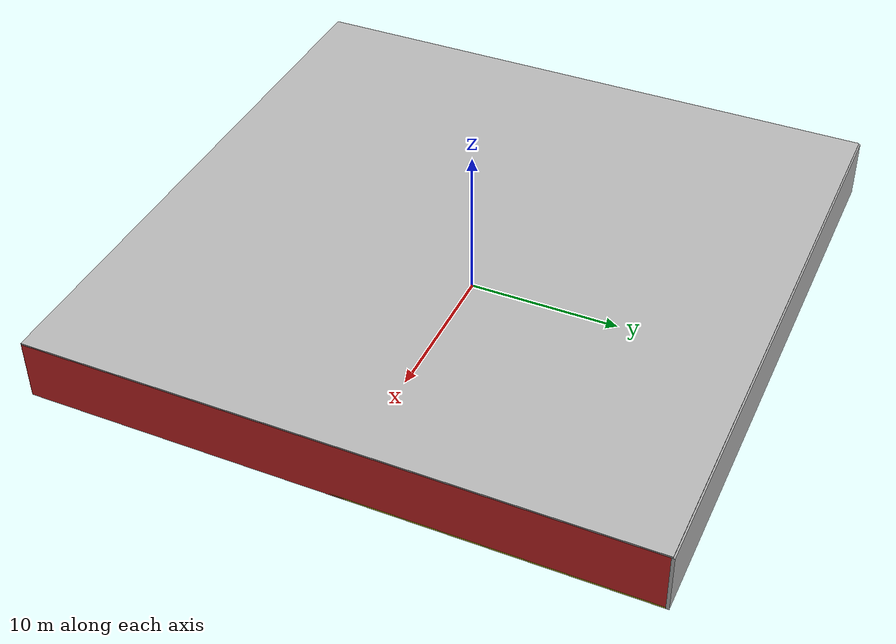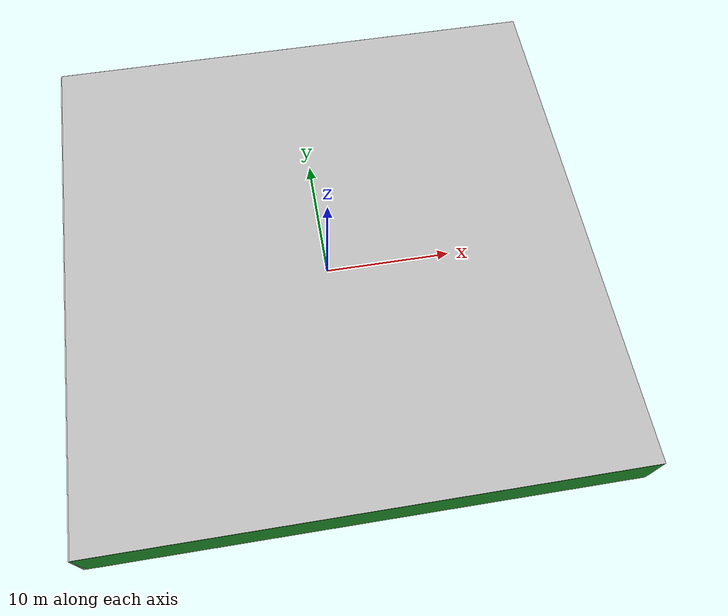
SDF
<sdf version="1.4">
 <world name="default">
  <physics type="ode">
   <max_step_size>0.001</max_step_size>
   <real_time_factor>1</real_time_factor>
   <real_time_update_rate>1000</real_time_update_rate>
   <gravity>0 0 -9.8</gravity>
  </physics>
  <scene><ambient>0.4 0.4 0.4 1</ambient><background>0.7 0.7 0.7 1</background><shadows>1</shadows></scene>
  <model name="Surrounding">
   <static>1</static>
   <link name="Ceiling">
    <collision name="Ceiling_Collision"><geometry><box><size>40 40 0.1</size></box></geometry></collision>
    <visual name="Ceiling_Visual">
     <geometry><box><size>40 40 0.1</size></box></geometry>
     <material>
      <script><uri>file://media/materials/scripts/gazebo.material</uri><name>Gazebo/PioneerBody</name></script>
     </material>
    </visual>
    <pose>0 0 4.05 0 0 0</pose>
   </link>
   <link name="Wall_South">
    <collision name="Wall_South_Collision">
     <geometry><box><size>40 0 4</size></box></geometry>
     <pose>0 0 2 0 -0 0</pose>
    </collision>
    <visual name="Wall_South_Visual">
     <pose>0 0 2 0 -0 0</pose>
     <geometry><box><size>40 0 4</size></box></geometry>
     <material>
      <script><uri>file://media/materials/scripts/gazebo.material</uri><name>Gazebo/GreenGlow</name></script>
     </material>
    </visual>
    <velocity_decay><linear>0</linear><angular>0</angular></velocity_decay>
    <pose>0 -20 0 0 -0 0</pose>
   </link>
   <link name="Wall_East">
    <collision name="Wall_21_Collision">
     <geometry><box><size>40 0 4</size></box></geometry>
     <pose>0 0 2 0 -0 0</pose>
    </collision>
    <visual name="Wall_21_Visual">
     <pose>0 0 2 0 -0 0</pose>
     <geometry><box><size>40 0 4</size></box></geometry>
     <material>
      <script><uri>file://media/materials/scripts/gazebo.material</uri><name>Gazebo/RedBright</name></script>
     </material>
    </visual>
    <velocity_decay><linear>0</linear><angular>0</angular></velocity_decay>
    <pose>20 0 0 0 -0 1.5708</pose>
   </link>
   <link name="Wall_North">
    <collision name="Wall_22_Collision">
     <geometry><box><size>40 0.2 4</size></box></geometry>
     <pose>0 0 2 0 -0 0</pose>
    </collision>
    <visual name="Wall_22_Visual">
     <pose>0 0 2 0 -0 0</pose>
     <geometry><box><size>40 0.2 4</size></box></geometry>
     <material>
      <script><uri>file://media/materials/scripts/gazebo.material</uri><name>Gazebo/JointAnchor</name></script>
     </material>
    </visual>
    <velocity_decay><linear>0</linear><angular>0</angular></velocity_decay>
    <pose>0 20 0 0 -0 0</pose>
   </link>
   <link name="Wall_West">
    <collision name="Wall_23_Collision">
     <geometry><box><size>40 0.2 4</size></box></geometry>
     <pose>0 0 2 0 -0 0</pose>
    </collision>
    <visual name="Wall_23_Visual">
     <pose>0 0 2 0 -0 0</pose>
     <geometry><box><size>40 0.2 4</size></box></geometry>
     <material>
      <script><uri>file://media/materials/scripts/gazebo.material</uri><name>Gazebo/White</name></script>
     </material>
    </visual>
    <velocity_decay><linear>0</linear><angular>0</angular></velocity_decay>
    <pose>-20 0 0 0 0 -1.5708</pose>
   </link>
   <link name="Ground_link">
    <collision name="collision">
     <pose>0 0 .05 0 -0 0</pose>
     <geometry><box><size>40 40 0.1</size></box></geometry>
    </collision>
    <visual name="visual">
     <pose>0 0 .05 0 -0 0</pose>
     <geometry><box><size>40 40 0.1</size></box></geometry>
     <material>
      <script><uri>file://media/materials/scripts/gazebo.material</uri><name>Gazebo/Yellow</name></script>
     </material>
    </visual>
   </link>
   <static>1</static>
  </model>
  <spherical_coordinates>
   <surface_model>EARTH_WGS84</surface_model>
   <latitude_deg>0</latitude_deg>
   <longitude_deg>0</longitude_deg>
   <elevation>0</elevation>
   <heading_deg>0</heading_deg>
  </spherical_coordinates>
  <light name="lightball_0" type="diffuse">
   <diffuse>0.8 0.8 0.8 1</diffuse>
   <specular>0.2 0.2 0.2 1</specular>
   <attenuation>
    <range>100</range>
    <constant>0.7</constant>
    <linear>0.01</linear>
    <quadratic>0.001</quadratic>
   </attenuation>
   <direction>-0.5 0.1 -0.9</direction>
   <pose>-13.3970193552 -18.5606174363 3.5485005842 0 0 0</pose>
  </light>
  <light name="lightball_1" type="diffuse">
   <diffuse>0.8 0.8 0.8 1</diffuse>
   <specular>0.2 0.2 0.2 1</specular>
   <attenuation>
    <range>100</range>
    <constant>0.7</constant>
    <linear>0.01</linear>
    <quadratic>0.001</quadratic>
   </attenuation>
   <direction>-0.5 0.1 -0.9</direction>
   <pose>18.301236493 -13.4355350916 2.41115991765 0 0 0</pose>
  </light>
  <light name="lightball_2" type="diffuse">
   <diffuse>0.8 0.8 0.8 1</diffuse>
   <specular>0.2 0.2 0.2 1</specular>
   <attenuation>
    <range>100</range>
    <constant>0.7</constant>
    <linear>0.01</linear>
    <quadratic>0.001</quadratic>
   </attenuation>
   <direction>-0.5 0.1 -0.9</direction>
   <pose>9.97730414524 -5.05133230263 0.671487895572 0 0 0</pose>
  </light>
  <light name="lightball_3" type="diffuse">
   <diffuse>0.8 0.8 0.8 1</diffuse>
   <specular>0.2 0.2 0.2 1</specular>
   <attenuation>
    <range>100</range>
    <constant>0.7</constant>
    <linear>0.01</linear>
    <quadratic>0.001</quadratic>
   </attenuation>
   <direction>-0.5 0.1 -0.9</direction>
   <pose>17.856221057 -14.0917824196 3.88241755449 0 0 0</pose>
  </light>
  <light name="lightball_4" type="diffuse">
   <diffuse>0.8 0.8 0.8 1</diffuse>
   <specular>0.2 0.2 0.2 1</specular>
   <attenuation>
    <range>100</range>
    <constant>0.7</constant>
    <linear>0.01</linear>
    <quadratic>0.001</quadratic>
   </attenuation>
   <direction>-0.5 0.1 -0.9</direction>
   <pose>18.7031527171 17.4810468625 2.24012604405 0 0 0</pose>
  </light>
  <light name="lightball_5" type="diffuse">
   <diffuse>0.8 0.8 0.8 1</diffuse>
   <specular>0.2 0.2 0.2 1</specular>
   <attenuation>
    <range>100</range>
    <constant>0.7</constant>
    <linear>0.01</linear>
    <quadratic>0.001</quadratic>
   </attenuation>
   <direction>-0.5 0.1 -0.9</direction>
   <pose>-6.17510929227 1.80811868524 2.07370204282 0 0 0</pose>
  </light>
  <light name="lightball_6" type="diffuse">
   <diffuse>0.8 0.8 0.8 1</diffuse>
   <specular>0.2 0.2 0.2 1</specular>
   <attenuation>
    <range>100</range>
    <constant>0.7</constant>
    <linear>0.01</linear>
    <quadratic>0.001</quadratic>
   </attenuation>
   <direction>-0.5 0.1 -0.9</direction>
   <pose>-15.8066935195 -8.99300043895 3.35239214442 0 0 0</pose>
  </light>
  <light name="lightball_7" type="diffuse">
   <diffuse>0.8 0.8 0.8 1</diffuse>
   <specular>0.2 0.2 0.2 1</specular>
   <attenuation>
    <range>100</range>
    <constant>0.7</constant>
    <linear>0.01</linear>
    <quadratic>0.001</quadratic>
   </attenuation>
   <direction>-0.5 0.1 -0.9</direction>
   <pose>-9.22575259529 12.0102518029 1.42632904996 0 0 0</pose>
  </light>
  <light name="lightball_8" type="diffuse">
   <diffuse>0.8 0.8 0.8 1</diffuse>
   <specular>0.2 0.2 0.2 1</specular>
   <attenuation>
    <range>100</range>
    <constant>0.7</constant>
    <linear>0.01</linear>
    <quadratic>0.001</quadratic>
   </attenuation>
   <direction>-0.5 0.1 -0.9</direction>
   <pose>7.79193853966 1.63369587065 2.98098942358 0 0 0</pose>
  </light>
  <light name="lightball_9" type="diffuse">
   <diffuse>0.8 0.8 0.8 1</diffuse>
   <specular>0.2 0.2 0.2 1</specular>
   <attenuation>
    <range>100</range>
    <constant>0.7</constant>
    <linear>0.01</linear>
    <quadratic>0.001</quadratic>
   </attenuation>
   <direction>-0.5 0.1 -0.9</direction>
   <pose>1.92067729526 -10.4171173025 1.28940368747 0 0 0</pose>
  </light>
  <light name="lightball_10" type="diffuse">
   <diffuse>0.8 0.8 0.8 1</diffuse>
   <specular>0.2 0.2 0.2 1</specular>
   <attenuation>
    <range>100</range>
    <constant>0.7</constant>
    <linear>0.01</linear>
    <quadratic>0.001</quadratic>
   </attenuation>
   <direction>-0.5 0.1 -0.9</direction>
   <pose>-7.79053943088 18.5771877409 0.953072906344 0 0 0</pose>
  </light>
  <light name="lightball_11" type="diffuse">
   <diffuse>0.8 0.8 0.8 1</diffuse>
   <specular>0.2 0.2 0.2 1</specular>
   <attenuation>
    <range>100</range>
    <constant>0.7</constant>
    <linear>0.01</linear>
    <quadratic>0.001</quadratic>
   </attenuation>
   <direction>-0.5 0.1 -0.9</direction>
   <pose>-7.64342470852 14.1762078191 3.10217208655 0 0 0</pose>
  </light>
  <light name="lightball_12" type="diffuse">
   <diffuse>0.8 0.8 0.8 1</diffuse>
   <specular>0.2 0.2 0.2 1</specular>
   <attenuation>
    <range>100</range>
    <constant>0.7</constant>
    <linear>0.01</linear>
    <quadratic>0.001</quadratic>
   </attenuation>
   <direction>-0.5 0.1 -0.9</direction>
   <pose>-0.441032660268 3.43454190612 1.6094624018 0 0 0</pose>
  </light>
  <include>
   <uri>model://construction_cone</uri>
   <pose>-18.5380310338 9.0508889732 0 0 0 1.21783068307</pose>
  </include>
  <include>
   <uri>model://first_2015_trash_can</uri>
   <pose>-13.474335843 -5.37596567077 0 0 0 0.0705936098238</pose>
  </include>
  <include><uri>model://cabinet</uri><pose>-14.3815595495 19.2186323372 0 0 0 2.61317644141</pose></include>
  <include><uri>model://cabinet</uri><pose>-11.0354519906 -12.0246322252 0 0 0 1.82856017686</pose></include>
  <include><uri>model://cabinet</uri><pose>-11.4610226954 -5.19397603624 0 0 0 3.05673151206</pose></include>
  <include><uri>model://cabinet</uri><pose>-11.5585053288 4.50363178696 0 0 0 0.312975779671</pose></include>
  <include>
   <uri>model://construction_cone</uri>
   <pose>-3.22497017746 -3.69673236091 0 0 0 2.26282795836</pose>
  </include>
  <include>
   <uri>model://first_2015_trash_can</uri>
   <pose>-1.75276237221 -0.273473230191 0 0 0 0.195079131602</pose>
  </include>
  <include>
   <uri>model://construction_cone</uri>
   <pose>-2.22821576401 18.0001426628 0 0 0 2.34519174576</pose>
  </include>
  <include><uri>model://table</uri><pose>-0.418278112501 0.440433215131 0 0 0 3.09980658317</pose></include>
  <include>
   <uri>model://construction_cone</uri>
   <pose>0.328540387034 17.908384261 0 0 0 0.235101716611</pose>
  </include>
  <include>
   <uri>model://textured_shapes</uri>
   <pose>4.27832395938 -6.27416490227 0 0 0 0.472965920517</pose>
  </include>
  <include>
   <uri>model://first_2015_trash_can</uri>
   <pose>6.67830975287 -13.5336219835 0 0 0 1.92686121573</pose>
  </include>
  <include>
   <uri>model://construction_cone</uri>
   <pose>7.08095264605 -9.20371535553 0 0 0 2.40043842538</pose>
  </include>
  <include>
   <uri>model://robocup_3Dsim_goal</uri>
   <pose>7.56031376505 -4.45620353799 0 0 0 1.72770128221</pose>
  </include>
  <include><uri>model://table</uri><pose>10.6752890016 -9.28575830229 0 0 0 2.98787905903</pose></include>
  <include><uri>model://cabinet</uri><pose>8.80540752455 -2.74398973525 0 0 0 1.57983925622</pose></include>
  <include><uri>model://cabinet</uri><pose>9.97172666261 1.09099856519 0 0 0 2.05255296987</pose></include>
  <include><uri>model://table</uri><pose>10.1449407853 13.1694399042 0 0 0 1.311476127</pose></include>
  <include><uri>model://cabinet</uri><pose>13.5773930348 3.80027286257 0 0 0 2.12936638234</pose></include>
  <include>
   <uri>model://textured_shapes</uri>
   <pose>13.4539185856 6.55294570385 0 0 0 1.68461010701</pose>
  </include>
  <include><uri>model://cabinet</uri><pose>15.0039508571 16.0025437005 0 0 0 0.30498936676</pose></include>
  <include>
   <uri>model://first_2015_trash_can</uri>
   <pose>19.4658822077 -10.8739923086 0 0 0 1.2499521915</pose>
  </include>
  <include><uri>model://cabinet</uri><pose>18.579522798 0.320041092963 0 0 0 2.0292058737</pose></include>
  <include>
   <uri>model://construction_cone</uri>
   <pose>18.9776316234 4.35577283548 0 0 0 2.18038233877</pose>
  </include>
  <include><uri>model://table</uri><pose>18.884259848 7.5540568923 0 0 0 0.172121311237</pose></include>
 </world>
</sdf>

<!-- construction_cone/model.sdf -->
<sdf version="1.5">
  <model name="Construction Cone">
    <link name="link">
      <collision name="collision">
        <geometry>
          <mesh>
            <scale>10 10 10</scale>
            <uri>file://isr-testbed/construction_cone/meshes/construction_cone.dae</uri>
          </mesh>
        </geometry>
      </collision>
      <visual name="visual">
        <geometry>
          <mesh>
            <scale>10 10 10</scale>
            <uri>file://isr-testbed/construction_cone/meshes/construction_cone.dae</uri>
          </mesh>
        </geometry>
      </visual>
    </link>
  </model>
</sdf>

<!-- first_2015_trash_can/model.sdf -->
<sdf version="1.5">
  <model name="first_2015_trash_can">
    <link name="link">
      <inertial>
        <pose>0 0 0.3683 0 0 0</pose>
        <mass>4.83076</mass>
        <inertia>
          <ixx>0.281534052</ixx>
          <ixy>0</ixy>
          <ixz>0</ixz>
          <iyy>0.281534052</iyy>
          <iyz>0</iyz>
          <izz>0.126222831</izz>
        </inertia>
      </inertial>

      <visual name="visual">
        <geometry>
          <mesh>
            <uri>model://first_2015_trash_can/meshes/trash_can.dae</uri>
          </mesh>
        </geometry>
      </visual>

      <collision name="collision">
        <geometry>
          <mesh>
            <uri>model://first_2015_trash_can/meshes/trash_can.dae</uri>
          </mesh>
        </geometry>
      </collision>
    </link>
  </model>
</sdf>

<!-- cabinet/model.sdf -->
<sdf version="1.5">
  <model name="cabinet">
    <static>true</static>
    <link name="cabinet_bottom_plate">
      <inertial>
        <pose>0 0 -1 0 0 0</pose>
        <inertia>
          <ixx>2.050000</ixx>
          <ixy>0</ixy>
          <ixz>0</ixz>
          <iyy>2.050000</iyy>
          <iyz>0</iyz>
          <izz>2.050000</izz>
        </inertia>
        <mass>25.000000</mass>
      </inertial>
      <collision name="cabinet_bottom_plate_geom">
        <pose>0 0 0.010000 0 0 0</pose>
        <geometry>
          <box>
            <size>0.450000 0.450000 0.020000</size>
          </box>
        </geometry>
      </collision>
      <visual name="cabinet_bottom_plate_geom_visual">
        <pose>0 0 0.010000 0 0 0</pose>
        <geometry>
          <box>
            <size>0.450000 0.450000 0.020000</size>
          </box>
        </geometry>
        <material>
          <script>
            <uri>model://media/materials/scripts/gazebo.material</uri>
            <name>Gazebo/Wood</name>
          </script>
        </material>
      </visual>
      <collision name="cabinet_bottom_plate_geom_cabinet_back_plate">
        <pose>0.235000 0 0.510000 0 0 0</pose>
        <geometry>
          <box>
            <size>0.020000 0.450000 1.020000</size>
          </box>
        </geometry>
      </collision>
      <visual name="cabinet_bottom_plate_geom_cabinet_back_plate_visual">
        <pose>0.235000 0 0.510000 0 0 0</pose>
        <geometry>
          <box>
            <size>0.020000 0.450000 1.020000</size>
          </box>
        </geometry>
        <material>
          <script>
            <uri>model://media/materials/scripts/gazebo.material</uri>
            <name>Gazebo/Wood</name>
          </script>
        </material>
      </visual>
      <collision name="cabinet_bottom_plate_geom_cabinet_left_plate">
        <pose>0 0.235000 0.510000 0 0 0</pose>
        <geometry>
          <box>
            <size>0.450000 0.020000 1.020000</size>
          </box>
        </geometry>
      </collision>
      <visual name="cabinet_bottom_plate_geom_cabinet_left_plate_visual">
        <pose>0 0.235000 0.510000 0 0 0</pose>
        <geometry>
          <box>
            <size>0.450000 0.020000 1.020000</size>
          </box>
        </geometry>
        <material>
          <script>
            <uri>model://media/materials/scripts/gazebo.material</uri>
            <name>Gazebo/Wood</name>
          </script>
        </material>
      </visual>
      <collision name="cabinet_bottom_plate_geom_cabinet_middle_plate">
        <pose>0 0 0.510000 0 0 0</pose>
        <geometry>
          <box>
            <size>0.450000 0.450000 0.020000</size>
          </box>
        </geometry>
      </collision>
      <visual name="cabinet_bottom_plate_geom_cabinet_middle_plate_visual">
        <pose>0 0 0.510000 0 0 0</pose>
        <geometry>
          <box>
            <size>0.450000 0.450000 0.020000</size>
          </box>
        </geometry>
        <material>
          <script>
            <uri>model://media/materials/scripts/gazebo.material</uri>
            <name>Gazebo/Wood</name>
          </script>
        </material>
      </visual>
      <collision name="cabinet_bottom_plate_geom_cabinet_right_plate">
        <pose>0 -0.235000 0.510000 0 0 0</pose>
        <geometry>
          <box>
            <size>0.450000 0.020000 1.020000</size>
          </box>
        </geometry>
      </collision>
      <visual name="cabinet_bottom_plate_geom_cabinet_right_plate_visual">
        <pose>0 -0.235000 0.510000 0 0 0</pose>
        <geometry>
          <box>
            <size>0.450000 0.020000 1.020000</size>
          </box>
        </geometry>
        <material>
          <script>
            <uri>model://media/materials/scripts/gazebo.material</uri>
            <name>Gazebo/Wood</name>
          </script>
        </material>
      </visual>
      <collision name="cabinet_bottom_plate_geom_cabinet_top_plate">
        <pose>0 0 1.010000 0 0 0</pose>
        <geometry>
          <box>
            <size>0.450000 0.450000 0.020000</size>
          </box>
        </geometry>
      </collision>
      <visual name="cabinet_bottom_plate_geom_cabinet_top_plate_visual">
        <pose>0 0 1.010000 0 0 0</pose>
        <geometry>
          <box>
            <size>0.450000 0.450000 0.020000</size>
          </box>
        </geometry>
        <material>
          <script>
            <uri>model://media/materials/scripts/gazebo.material</uri>
            <name>Gazebo/Wood</name>
          </script>
        </material>
      </visual>
    </link>
  </model>
</sdf>

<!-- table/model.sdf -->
<sdf version="1.5">
  <model name="table">
    <static>true</static>
    <link name="link">
      <collision name="surface">
        <pose>0 0 1.0 0 0 0</pose>
        <geometry>
          <box>
            <size>1.5 0.8 0.03</size>
          </box>
        </geometry>
        <surface>
          <friction>
            <ode>
              <mu>0.6</mu>
              <mu2>0.6</mu2>
            </ode>
          </friction>
        </surface>
      </collision>
      <visual name="visual1">
        <pose>0 0 1.0 0 0 0</pose>
        <geometry>
          <box>
            <size>1.5 0.8 0.03</size>
          </box>
        </geometry>
        <material>
          <script>
            <uri>model://media/materials/scripts/gazebo.material</uri>
            <name>Gazebo/Wood</name>
          </script>
        </material>
      </visual>
      <collision name="front_left_leg">
        <pose>0.68 0.38 0.5 0 0 0</pose>
        <geometry>
          <cylinder>
            <radius>0.02</radius>
            <length>1.0</length>
          </cylinder>
        </geometry>
      </collision>
      <visual name="front_left_leg">
        <pose>0.68 0.38 0.5 0 0 0</pose>
        <geometry>
          <cylinder>
            <radius>0.02</radius>
            <length>1.0</length>
          </cylinder>
        </geometry>
        <material>
          <script>
            <uri>model://media/materials/scripts/gazebo.material</uri>
            <name>Gazebo/Grey</name>
          </script>
        </material>
      </visual>
      <collision name="front_right_leg">
        <pose>0.68 -0.38 0.5 0 0 0</pose>
        <geometry>
          <cylinder>
            <radius>0.02</radius>
            <length>1.0</length>
          </cylinder>
        </geometry>
      </collision>
      <visual name="front_right_leg">
        <pose>0.68 -0.38 0.5 0 0 0</pose>
        <geometry>
          <cylinder>
            <radius>0.02</radius>
            <length>1.0</length>
          </cylinder>
        </geometry>
        <material>
          <script>
            <uri>model://media/materials/scripts/gazebo.material</uri>
            <name>Gazebo/Grey</name>
          </script>
        </material>
      </visual>
      <collision name="back_right_leg">
        <pose>-0.68 -0.38 0.5 0 0 0</pose>
        <geometry>
          <cylinder>
            <radius>0.02</radius>
            <length>1.0</length>
          </cylinder>
        </geometry>
      </collision>
      <visual name="back_right_leg">
        <pose>-0.68 -0.38 0.5 0 0 0</pose>
        <geometry>
          <cylinder>
            <radius>0.02</radius>
            <length>1.0</length>
          </cylinder>
        </geometry>
        <material>
          <script>
            <uri>model://media/materials/scripts/gazebo.material</uri>
            <name>Gazebo/Grey</name>
          </script>
        </material>
      </visual>
      <collision name="back_left_leg">
        <pose>-0.68 0.38 0.5 0 0 0</pose>
        <geometry>
          <cylinder>
            <radius>0.02</radius>
            <length>1.0</length>
          </cylinder>
        </geometry>
      </collision>
      <visual name="back_left_leg">
        <pose>-0.68 0.38 0.5 0 0 0</pose>
        <geometry>
          <cylinder>
            <radius>0.02</radius>
            <length>1.0</length>
          </cylinder>
        </geometry>
        <material>
          <script>
            <uri>model://media/materials/scripts/gazebo.material</uri>
            <name>Gazebo/Grey</name>
          </script>
        </material>
      </visual>
    </link>
  </model>
</sdf>

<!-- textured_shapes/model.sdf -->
<sdf version="1.6">
  <model name="textured_shapes">
    <pose>0 0 0.5 0 0 0</pose>
    <link name="box">
      <pose>0 -1.5 0 0 0 0</pose>
      <collision name="collision">
        <geometry>
          <box>
            <size>1 1 1</size>
          </box>
        </geometry>
      </collision>
      <visual name="visual">
        <geometry>
          <box>
            <size>1 1 1</size>
          </box>
        </geometry>
        <material>
          <script>
            <uri>model://../model_source/models/textured_shapes/materials/scripts</uri>
            <uri>model://../model_source/models/textured_shapes/materials/textures</uri>
            <name>TexturedShape/Squares</name>
          </script>
        </material>
      </visual>
    </link>
    <link name="sphere">
      <collision name="collision">
        <geometry>
          <sphere>
            <radius>0.5</radius>
          </sphere>
        </geometry>
      </collision>
      <visual name="visual">
        <geometry>
          <sphere>
            <radius>0.5</radius>
          </sphere>
        </geometry>
        <material>
          <script>
            <uri>model://../model_source/models/textured_shapes/materials/scripts</uri>
            <uri>model://../model_source/models/textured_shapes/materials/textures</uri>
            <name>TexturedShape/Squares</name>
          </script>
        </material>
      </visual>
    </link>
    <link name="cylinder">
      <pose>0 1.5 0 0 0 0</pose>
      <collision name="collision">
        <geometry>
          <cylinder>
            <radius>0.5</radius>
            <length>1</length>
          </cylinder>
        </geometry>
      </collision>
      <visual name="visual">
        <geometry>
          <cylinder>
            <radius>0.5</radius>
            <length>1</length>
          </cylinder>
        </geometry>
        <material>
          <script>
            <uri>model://../model_source/models/textured_shapes/materials/scripts</uri>
            <uri>model://../model_source/models/textured_shapes/materials/textures</uri>
            <name>TexturedShape/Squares</name>
          </script>
        </material>
      </visual>
    </link>
  </model>
</sdf>

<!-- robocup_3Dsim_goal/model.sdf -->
<sdf version="1.5">
  <model name="robocup_3d_goal">
    <static>true</static>
    <link name="left_post">
      <pose>0 1.05 0.45 0 0 0</pose>
      <collision name="collision">
        <geometry>
          <cylinder>
            <radius>0.05</radius>
            <length>0.9</length>
          </cylinder>
        </geometry>
      </collision>
      <visual name="visual">
        <geometry>
          <cylinder>
            <radius>0.05</radius>
            <length>0.9</length>
          </cylinder>
        </geometry>
        <material>
          <script>
            <uri>file://media/materials/scripts/gazebo.material</uri>
            <name>Gazebo/ZincYellow</name>
          </script>
        </material>
      </visual>
    </link>
    <link name="left_support_horiz_lower">
      <pose>0.30 1.05 0.01 0 0 0</pose>
      <collision name="collision">
        <geometry>
          <box>
            <size>0.50 0.02 0.02</size>
          </box>
        </geometry>
      </collision>
      <visual name="visual">
        <geometry>
          <box>
            <size>0.50 0.02 0.02</size>
          </box>
        </geometry>
        <material>
          <script>
            <uri>file://media/materials/scripts/gazebo.material</uri>
            <name>Gazebo/White</name>
          </script>
        </material>
      </visual>
    </link>
    <link name="left_support_horiz_upper">
      <pose>0.30 1.05 0.79 0 0 0</pose>
      <collision name="collision">
        <geometry>
          <box>
            <size>0.50 0.02 0.02</size>
          </box>
        </geometry>
      </collision>
      <visual name="visual">
        <geometry>
          <box>
            <size>0.50 0.02 0.02</size>
          </box>
        </geometry>
        <material>
          <script>
            <uri>file://media/materials/scripts/gazebo.material</uri>
            <name>Gazebo/White</name>
          </script>
        </material>
      </visual>
    </link>
    <link name="left_support_vertical">
      <pose>0.56 1.05 0.4 0 1.5708 0</pose>
      <collision name="collision">
        <geometry>
          <box>
            <size>0.80 0.02 0.02</size>
          </box>
        </geometry>
      </collision>
      <visual name="visual">
        <geometry>
          <box>
            <size>0.80 0.02 0.02</size>
          </box>
        </geometry>
        <material>
          <script>
            <uri>file://media/materials/scripts/gazebo.material</uri>
            <name>Gazebo/White</name>
          </script>
        </material>
      </visual>
    </link>
    <link name="right_support_horiz_lower">
      <pose>0.30 -1.05 0.01 0 0 0</pose>
      <collision name="collision">
        <geometry>
          <box>
            <size>0.50 0.02 0.02</size>
          </box>
        </geometry>
      </collision>
      <visual name="visual">
        <geometry>
          <box>
            <size>0.50 0.02 0.02</size>
          </box>
        </geometry>
        <material>
          <script>
            <uri>file://media/materials/scripts/gazebo.material</uri>
            <name>Gazebo/White</name>
          </script>
        </material>
      </visual>
    </link>
    <link name="right_support_horiz_upper">
      <pose>0.30 -1.05 0.79 0 0 0</pose>
      <collision name="collision">
        <geometry>
          <box>
            <size>0.50 0.02 0.02</size>
          </box>
        </geometry>
      </collision>
      <visual name="visual">
        <geometry>
          <box>
            <size>0.50 0.02 0.02</size>
          </box>
        </geometry>
        <material>
          <script>
            <uri>file://media/materials/scripts/gazebo.material</uri>
            <name>Gazebo/White</name>
          </script>
        </material>
      </visual>
    </link>
    <link name="right_support_vertical">
      <pose>0.56 -1.05 0.4 0 1.5708 0</pose>
      <collision name="collision">
        <geometry>
          <box>
            <size>0.80 0.02 0.02</size>
          </box>
        </geometry>
      </collision>
      <visual name="visual">
        <geometry>
          <box>
            <size>0.80 0.02 0.02</size>
          </box>
        </geometry>
        <material>
          <script>
            <uri>file://media/materials/scripts/gazebo.material</uri>
            <name>Gazebo/White</name>
          </script>
        </material>
      </visual>
    </link>
    <link name="center_support_horiz_lower">
      <pose>0.56 0 0.01 0 1.5708 0</pose>
      <collision name="collision">
        <geometry>
          <box>
            <size>0.02 2.08 0.02</size>
          </box>
        </geometry>
      </collision>
      <visual name="visual">
        <geometry>
          <box>
            <size>0.02 2.08 0.02</size>
          </box>
        </geometry>
        <material>
          <script>
            <uri>file://media/materials/scripts/gazebo.material</uri>
            <name>Gazebo/White</name>
          </script>
        </material>
      </visual>
    </link>
    <link name="center_support_horiz_upper">
      <pose>0.56 0 0.79 0 1.5708 0</pose>
      <collision name="collision">
        <geometry>
          <box>
            <size>0.02 2.08 0.02</size>
          </box>
        </geometry>
      </collision>
      <visual name="visual">
        <geometry>
          <box>
            <size>0.02 2.08 0.02</size>
          </box>
        </geometry>
        <material>
          <script>
            <uri>file://media/materials/scripts/gazebo.material</uri>
            <name>Gazebo/White</name>
          </script>
        </material>
      </visual>
    </link>
    <link name="right_post">
      <pose>0 -1.05 0.45 0 0 0</pose>
      <collision name="collision">
        <geometry>
          <cylinder>
            <radius>0.05</radius>
            <length>0.9</length>
          </cylinder>
        </geometry>
      </collision>
      <visual name="visual">
        <geometry>
          <cylinder>
            <radius>0.05</radius>
            <length>0.9</length>
          </cylinder>
        </geometry>
        <material>
          <script>
            <uri>file://media/materials/scripts/gazebo.material</uri>
            <name>Gazebo/ZincYellow</name>
          </script>
        </material>
      </visual>
    </link>
    <link name="crossbar">
      <pose>0 0 0.85 1.57 1.57 0</pose>
      <collision name="collision">
        <geometry>
          <cylinder>
            <radius>0.05</radius>
            <length>2.0</length>
          </cylinder>
        </geometry>
      </collision>
      <visual name="visual">
        <geometry>
          <cylinder>
            <radius>0.05</radius>
            <length>2.0</length>
          </cylinder>
        </geometry>
        <material>
          <script>
            <uri>file://media/materials/scripts/gazebo.material</uri>
            <name>Gazebo/ZincYellow</name>
          </script>
        </material>
      </visual>
    </link>
    <link name="center_net">
      <pose>0.56 0 0.40 0 0 0</pose>
      <collision name="collision">
        <geometry>
          <box>
            <size>0.01 2.1 0.80</size>
          </box>
        </geometry>
      </collision>
      <visual name="visual">
        <geometry>
          <box>
            <size>0.01 2.1 0.80</size>
          </box>
        </geometry>
        <material>
          <script>
            <uri>model://../model_source/models/robocup09_spl_field/materials/scripts/</uri>
            <uri>model://../model_source/models/robocup09_spl_field/materials/textures/</uri>
            <name>RoboCup/Net</name>
          </script>
        </material>
      </visual>
    </link>
    <link name="left_net">
      <pose>0.30 1.05 0.40 0 0 0</pose>
      <collision name="collision">
        <geometry>
          <box>
            <size>0.50 0.01 0.76</size>
          </box>
        </geometry>
      </collision>
      <visual name="visual">
        <geometry>
          <box>
            <size>0.50 0.01 0.76</size>
          </box>
        </geometry>
        <material>
          <script>
            <uri>model://../model_source/models/robocup09_spl_field/materials/scripts/</uri>
            <uri>model://../model_source/models/robocup09_spl_field/materials/textures/</uri>
            <name>RoboCup/Net</name>
          </script>
        </material>
      </visual>
    </link>
    <link name="right_net">
      <pose>0.30 -1.05 0.40 0 0 0</pose>
      <collision name="collision">
        <geometry>
          <box>
            <size>0.50 0.01 0.76</size>
          </box>
        </geometry>
      </collision>
      <visual name="visual">
        <geometry>
          <box>
            <size>0.50 0.01 0.76</size>
          </box>
        </geometry>
        <material>
          <script>
            <uri>model://../model_source/models/robocup09_spl_field/materials/scripts/</uri>
            <uri>model://../model_source/models/robocup09_spl_field/materials/textures/</uri>
            <name>RoboCup/Net</name>
          </script>
        </material>
      </visual>
    </link>
  </model>
</sdf>
